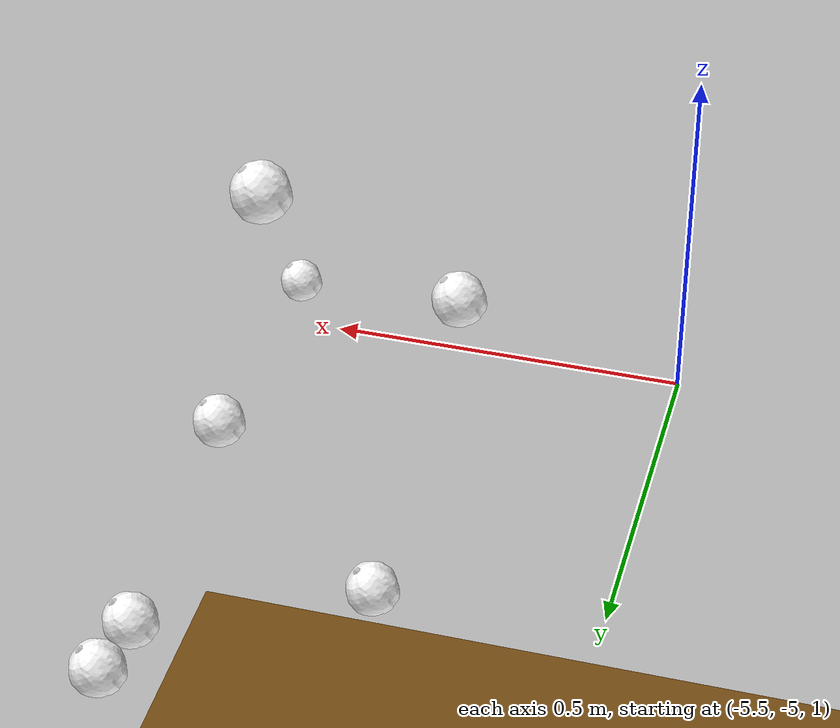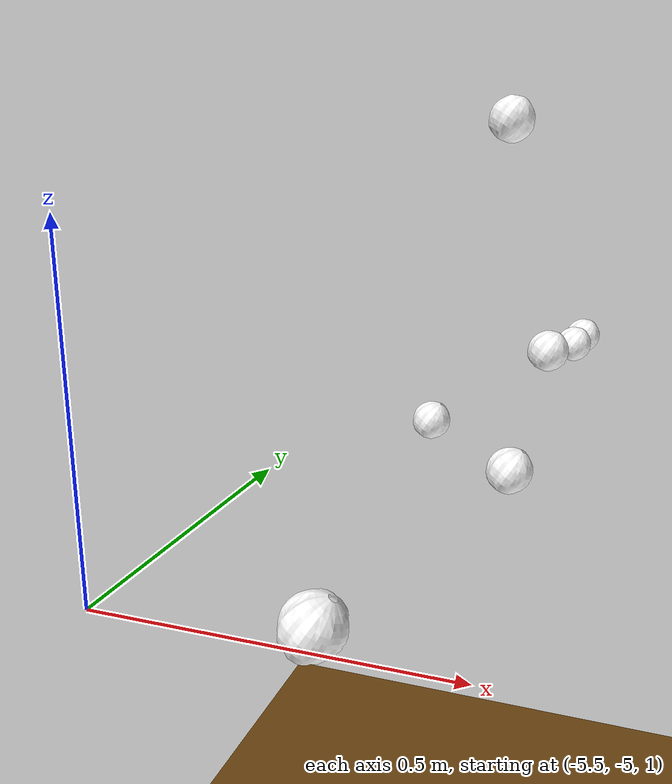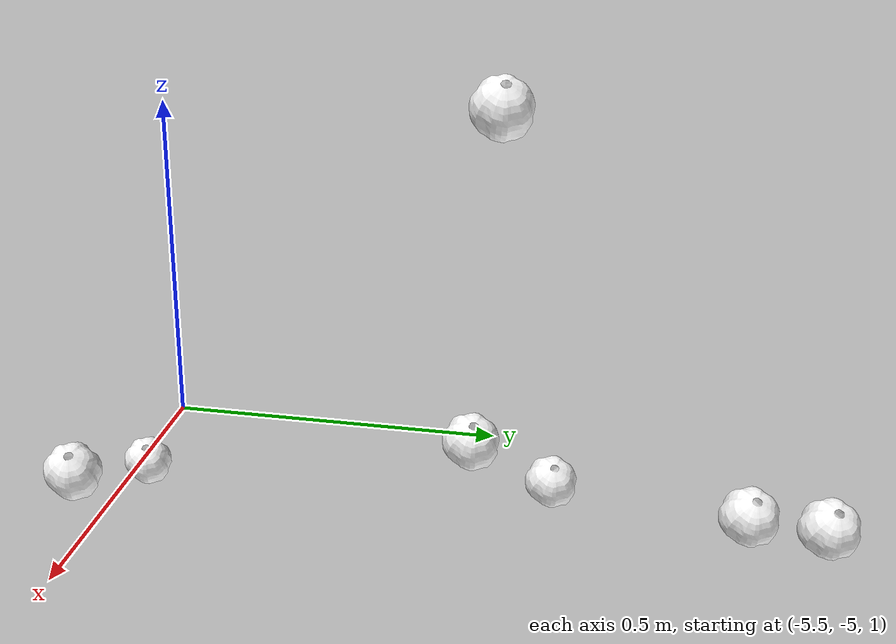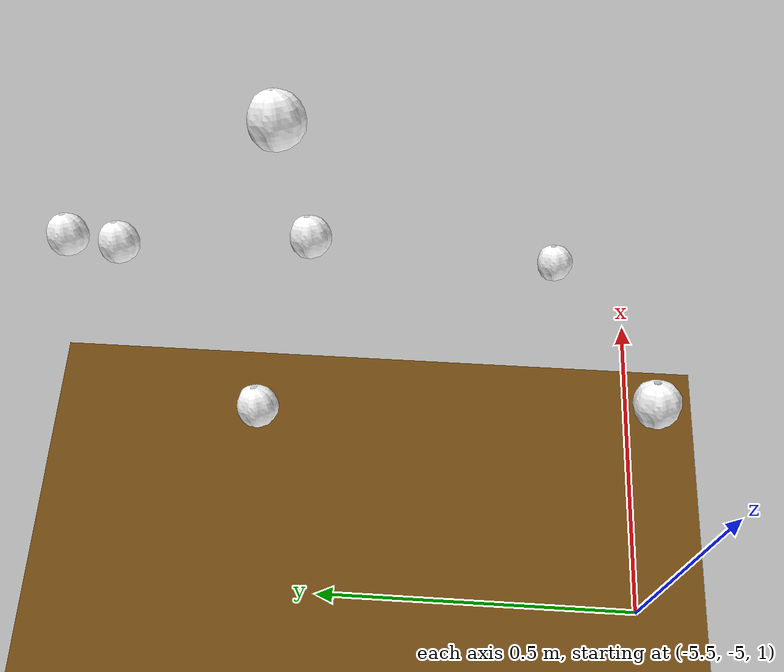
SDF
<sdf version="1.10">
 <world name="field">
  <model name="ground_plane">
   <static>true</static>
   <pose>0 0 -0.025 0 0 0</pose>
   <link name="ground_link">
    <collision name="collision"><geometry><box><size>22 14 0.05</size></box></geometry></collision>
    <visual name="visual">
     <geometry><box><size>22 14 0.05</size></box></geometry>
     <material><ambient>0.45 0.29 0.07 1</ambient><diffuse>0.45 0.29 0.07 1</diffuse></material>
    </visual>
   </link>
  </model>
  <model name="tomato_0_fruit_0">
   <static>true</static>
   <pose>-4.9923227652214948 -4.8511804973645578 1.1925205228583835 0 0 0</pose>
   <link name="fruit_link">
    <collision name="fruit_collision">
     <geometry><sphere><radius>0.030375161328340002</radius></sphere></geometry>
    </collision>
    <visual name="fruit_visual">
     <geometry>
      <mesh>
       <uri>model://tomato_fruit/meshes/fruit.dae</uri>
       <scale>0.060750322656680004 0.060750322656680004 0.060750322656680004</scale>
      </mesh>
     </geometry>
     <material>
      <ambient>1 1 1 1</ambient>
      <diffuse>1 1 1 1</diffuse>
      <pbr>
       <metal>
        <albedo_map>model://tomato_0/materials/textures/AG15frt1.png</albedo_map>
        <metalness>0</metalness>
        <roughness>0.4</roughness>
       </metal>
      </pbr>
     </material>
    </visual>
   </link>
  </model>
  <model name="tomato_0_fruit_1">
   <static>true</static>
   <pose>-5.1706093909267485 -5.0382740260796099 1.0608571828405913 0 0 0</pose>
   <link name="fruit_link">
    <collision name="fruit_collision">
     <geometry><sphere><radius>0.043382693515572682</radius></sphere></geometry>
    </collision>
    <visual name="fruit_visual">
     <geometry>
      <mesh>
       <uri>model://tomato_fruit/meshes/fruit.dae</uri>
       <scale>0.086765387031145363 0.086765387031145363 0.086765387031145363</scale>
      </mesh>
     </geometry>
     <material>
      <ambient>1 1 1 1</ambient>
      <diffuse>1 1 1 1</diffuse>
      <pbr>
       <metal>
        <albedo_map>model://tomato_0/materials/textures/AG15frt1.png</albedo_map>
        <metalness>0</metalness>
        <roughness>0.4</roughness>
       </metal>
      </pbr>
     </material>
    </visual>
   </link>
  </model>
  <model name="tomato_1_fruit_1">
   <static>true</static>
   <pose>-4.9863398340146672 -4.0673917168700964 1.1947334957614639 0 0 0</pose>
   <link name="fruit_link">
    <collision name="fruit_collision">
     <geometry><sphere><radius>0.036738135694257802</radius></sphere></geometry>
    </collision>
    <visual name="fruit_visual">
     <geometry>
      <mesh>
       <uri>model://tomato_fruit/meshes/fruit.dae</uri>
       <scale>0.073476271388515604 0.073476271388515604 0.073476271388515604</scale>
      </mesh>
     </geometry>
     <material>
      <ambient>1 1 1 1</ambient>
      <diffuse>1 1 1 1</diffuse>
      <pbr>
       <metal>
        <albedo_map>model://tomato_0/materials/textures/AG15frt1.png</albedo_map>
        <metalness>0</metalness>
        <roughness>0.4</roughness>
       </metal>
      </pbr>
     </material>
    </visual>
   </link>
  </model>
  <model name="tomato_1_fruit_2">
   <static>true</static>
   <pose>-4.9956776725499976 -4.1520723449244326 1.1945099391701492 0 0 0</pose>
   <link name="fruit_link">
    <collision name="fruit_collision">
     <geometry><sphere><radius>0.036339215972302538</radius></sphere></geometry>
    </collision>
    <visual name="fruit_visual">
     <geometry>
      <mesh>
       <uri>model://tomato_fruit/meshes/fruit.dae</uri>
       <scale>0.072678431944605076 0.072678431944605076 0.072678431944605076</scale>
      </mesh>
     </geometry>
     <material>
      <ambient>1 1 1 1</ambient>
      <diffuse>1 1 1 1</diffuse>
      <pbr>
       <metal>
        <albedo_map>model://tomato_0/materials/textures/AG15frt1.png</albedo_map>
        <metalness>0</metalness>
        <roughness>0.4</roughness>
       </metal>
      </pbr>
     </material>
    </visual>
   </link>
  </model>
  <model name="tomato_1_fruit_3">
   <static>true</static>
   <pose>-5.0037485232025567 -4.464671584448209 1.2512855663392399 0 0 0</pose>
   <link name="fruit_link">
    <collision name="fruit_collision">
     <geometry><sphere><radius>0.035698909509560062</radius></sphere></geometry>
    </collision>
    <visual name="fruit_visual">
     <geometry>
      <mesh>
       <uri>model://tomato_fruit/meshes/fruit.dae</uri>
       <scale>0.071397819019120123 0.071397819019120123 0.071397819019120123</scale>
      </mesh>
     </geometry>
     <material>
      <ambient>1 1 1 1</ambient>
      <diffuse>1 1 1 1</diffuse>
      <pbr>
       <metal>
        <albedo_map>model://tomato_0/materials/textures/AG15frt1.png</albedo_map>
        <metalness>0</metalness>
        <roughness>0.4</roughness>
       </metal>
      </pbr>
     </material>
    </visual>
   </link>
  </model>
  <model name="tomato_1_fruit_4">
   <static>true</static>
   <pose>-5.2226854249807886 -4.3892325223143178 1.0873783139972466 0 0 0</pose>
   <link name="fruit_link">
    <collision name="fruit_collision">
     <geometry><sphere><radius>0.03689137319507764</radius></sphere></geometry>
    </collision>
    <visual name="fruit_visual">
     <geometry>
      <mesh>
       <uri>model://tomato_fruit/meshes/fruit.dae</uri>
       <scale>0.073782746390155279 0.073782746390155279 0.073782746390155279</scale>
      </mesh>
     </geometry>
     <material>
      <ambient>1 1 1 1</ambient>
      <diffuse>1 1 1 1</diffuse>
      <pbr>
       <metal>
        <albedo_map>model://tomato_0/materials/textures/AG15frt1.png</albedo_map>
        <metalness>0</metalness>
        <roughness>0.4</roughness>
       </metal>
      </pbr>
     </material>
    </visual>
   </link>
  </model>
  <model name="tomato_1_fruit_5">
   <static>true</static>
   <pose>-5.0766200595351263 -4.4483999982162787 1.6198162235557647 0 0 0</pose>
   <link name="fruit_link">
    <collision name="fruit_collision">
     <geometry><sphere><radius>0.039429596992416646</radius></sphere></geometry>
    </collision>
    <visual name="fruit_visual">
     <geometry>
      <mesh>
       <uri>model://tomato_fruit/meshes/fruit.dae</uri>
       <scale>0.078859193984833292 0.078859193984833292 0.078859193984833292</scale>
      </mesh>
     </geometry>
     <material>
      <ambient>1 1 1 1</ambient>
      <diffuse>1 1 1 1</diffuse>
      <pbr>
       <metal>
        <albedo_map>model://tomato_0/materials/textures/AG15frt1.png</albedo_map>
        <metalness>0</metalness>
        <roughness>0.4</roughness>
       </metal>
      </pbr>
     </material>
    </visual>
   </link>
  </model>
 </world>
</sdf>
